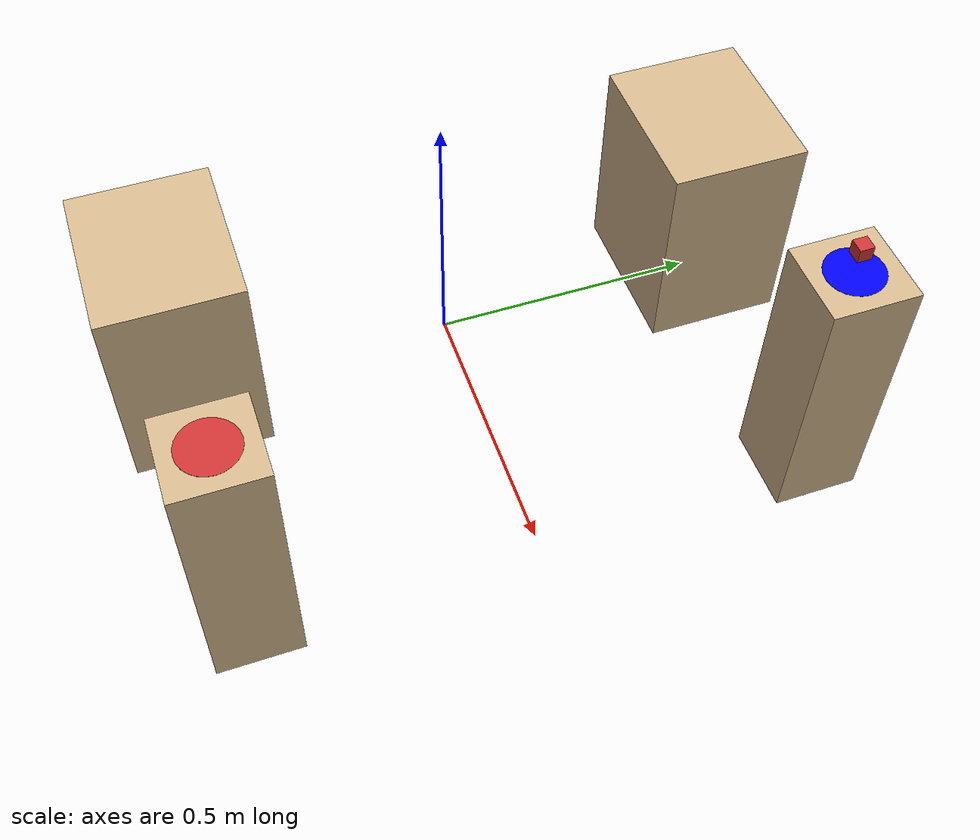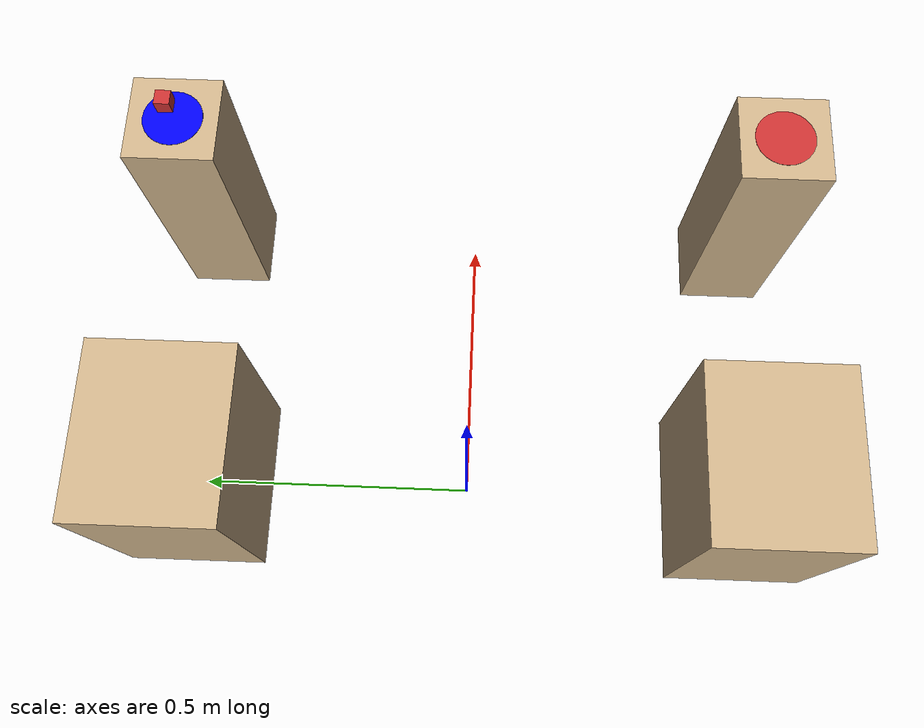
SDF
<sdf version="1.6">
 <world name="pick_and_place_sorting_world">
  <joint name="world_to_panda_1" type="fixed"><parent>world</parent><child>panda_1::panda_link0</child></joint>
  <joint name="world_to_panda_2" type="fixed"><parent>world</parent><child>panda_2::panda_link0</child></joint>
  <model name="table_source">
   <static>true</static>
   <pose>0.5 0.5 0.25 0 0 0</pose>
   <link name="table_source_top_link">
    <visual name="visual">
     <geometry><box><size>0.15 0.15 0.5</size></box></geometry>
     <material><diffuse>0.82 0.71 0.55 1.0</diffuse><specular>0.2 0.2 0.2 1.0</specular></material>
    </visual>
    <collision name="collision">
     <geometry><box><size>0.15 0.15 0.5</size></box></geometry>
     <proximity_properties><mu_dynamic>0.3</mu_dynamic><mu_static>0.3</mu_static></proximity_properties>
    </collision>
   </link>
  </model>
  <model name="table_target">
   <static>true</static>
   <pose>0.5 -0.5 0.25 0 0 0</pose>
   <link name="table_source_top_link">
    <visual name="visual">
     <geometry><box><size>0.15 0.15 0.5</size></box></geometry>
     <material><diffuse>0.82 0.71 0.55 1.0</diffuse><specular>0.2 0.2 0.2 1.0</specular></material>
    </visual>
    <collision name="collision">
     <geometry><box><size>0.15 0.15 0.5</size></box></geometry>
     <proximity_properties><mu_dynamic>0.3</mu_dynamic><mu_static>0.3</mu_static></proximity_properties>
    </collision>
   </link>
  </model>
  <model name="panda_base_1">
   <static>true</static>
   <pose>0.0 0.5 0.2 0 0 0</pose>
   <link name="panda_base_1_link">
    <visual name="visual">
     <geometry><box><size>0.3 0.25 0.4</size></box></geometry>
     <material><diffuse>0.82 0.71 0.55 1.0</diffuse><specular>0.2 0.2 0.2 1.0</specular></material>
    </visual>
    <collision name="collision">
     <geometry><box><size>0.3 0.25 0.4</size></box></geometry>
     <proximity_properties><mu_dynamic>0.3</mu_dynamic><mu_static>0.3</mu_static></proximity_properties>
    </collision>
   </link>
  </model>
  <model name="panda_base_2">
   <static>true</static>
   <pose>0.0 -0.5 0.2 0 0 0</pose>
   <link name="panda_base_2_link">
    <visual name="visual">
     <geometry><box><size>0.3 0.25 0.4</size></box></geometry>
     <material><diffuse>0.82 0.71 0.55 1.0</diffuse><specular>0.2 0.2 0.2 1.0</specular></material>
    </visual>
    <collision name="collision">
     <geometry><box><size>0.3 0.25 0.4</size></box></geometry>
     <proximity_properties><mu_dynamic>0.3</mu_dynamic><mu_static>0.3</mu_static></proximity_properties>
    </collision>
   </link>
  </model>
  <model name="cube">
   <pose>0.5 0.5 0.55 0 0 0</pose>
   <link name="link">
    <inertial>
     <mass>0.1</mass>
     <inertia><ixx>8.33e-5</ixx><iyy>8.33e-5</iyy><izz>8.33e-5</izz><ixy>0</ixy><ixz>0</ixz><iyz>0</iyz></inertia>
    </inertial>
    <collision name="collision">
     <geometry><box><size>0.025 0.025 0.025</size></box></geometry>
     <proximity_properties><mu_dynamic>0.5</mu_dynamic><mu_static>0.5</mu_static></proximity_properties>
    </collision>
    <visual name="visual">
     <geometry><box><size>0.025 0.025 0.025</size></box></geometry>
     <material><diffuse>0.8 0.2 0.2 1.0</diffuse></material>
    </visual>
   </link>
  </model>
  <model name="cylinder_initial">
   <pose>0.5 0.5 0.5 0 0 0</pose>
   <static>true</static>
   <link name="link">
    <inertial>
     <mass>0.05</mass>
     <inertia><ixx>1.67e-5</ixx><iyy>1.67e-5</iyy><izz>3.33e-5</izz><ixy>0</ixy><ixz>0</ixz><iyz>0</iyz></inertia>
    </inertial>
    <visual name="visual">
     <geometry><cylinder><radius>0.05</radius><length>0.001</length></cylinder></geometry>
     <material><diffuse>0 0 1 1</diffuse></material>
    </visual>
   </link>
  </model>
  <model name="cylinder_target">
   <pose>0.5 -0.5 0.5 0 0 0</pose>
   <static>true</static>
   <link name="link">
    <inertial>
     <mass>0.05</mass>
     <inertia><ixx>1.67e-5</ixx><iyy>1.67e-5</iyy><izz>3.33e-5</izz><ixy>0</ixy><ixz>0</ixz><iyz>0</iyz></inertia>
    </inertial>
    <visual name="visual">
     <geometry><cylinder><radius>0.05</radius><length>0.001</length></cylinder></geometry>
     <material><diffuse>0.8 0.2 0.2 1.0</diffuse></material>
    </visual>
   </link>
  </model>
 </world>
</sdf>
